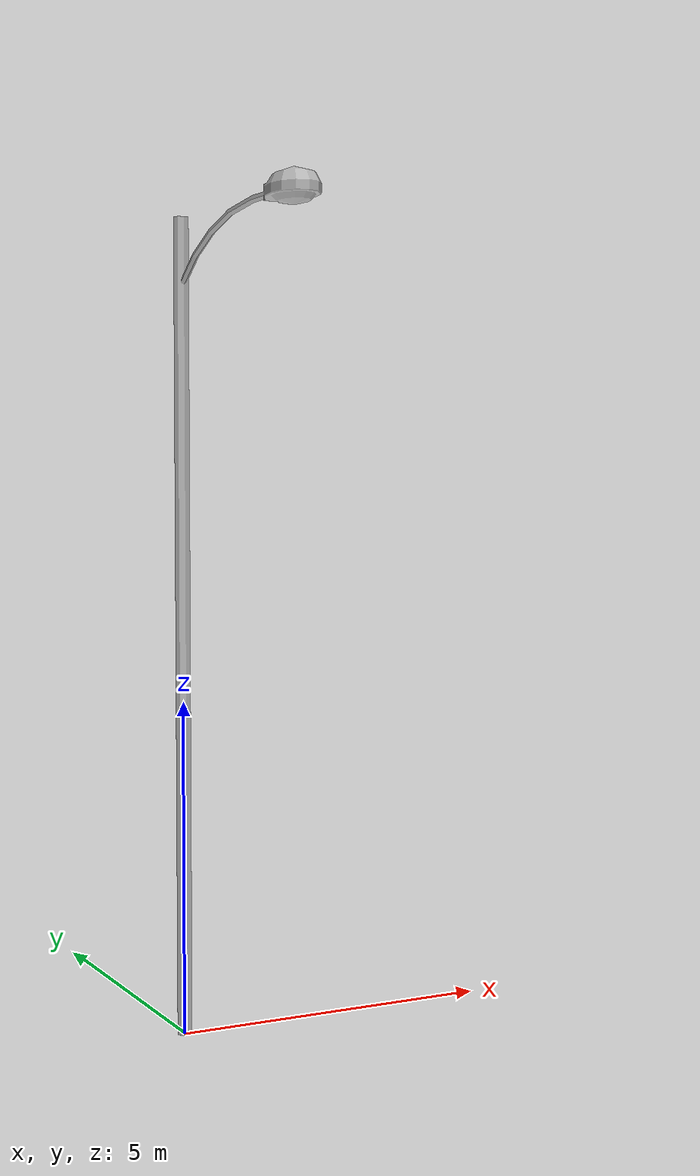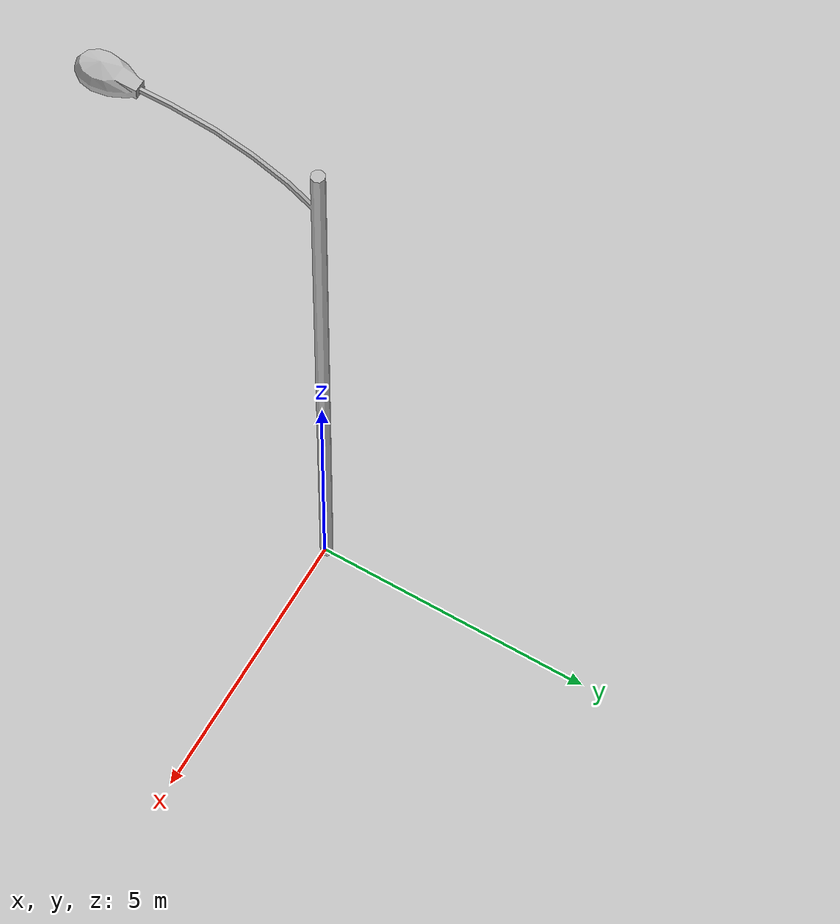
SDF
<?xml version="1.0" ?>
<sdf version="1.6">
  <model name="street_light">
    <static>true</static>
    <link name="link">
      <collision name="collision">
        <geometry>
          <mesh>
            <scale>0.1 0.1 0.1</scale>
            <uri>model://street_light/meshes/street_light.obj</uri>
          </mesh>
        </geometry>
      </collision>

      <visual name="visual">
        <geometry>
          <mesh>
            <scale>0.1 0.1 0.1</scale>
            <uri>model://street_light/meshes/street_light.obj</uri>
          </mesh>
        </geometry>
      </visual>
    </link>
  </model>
</sdf>
